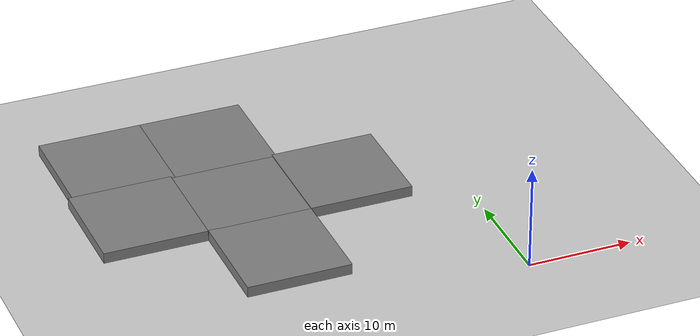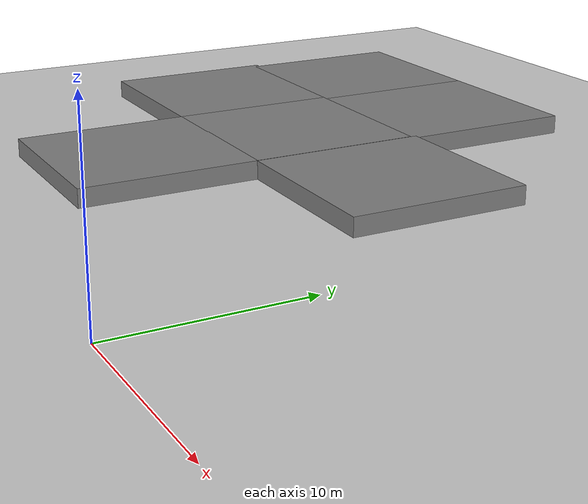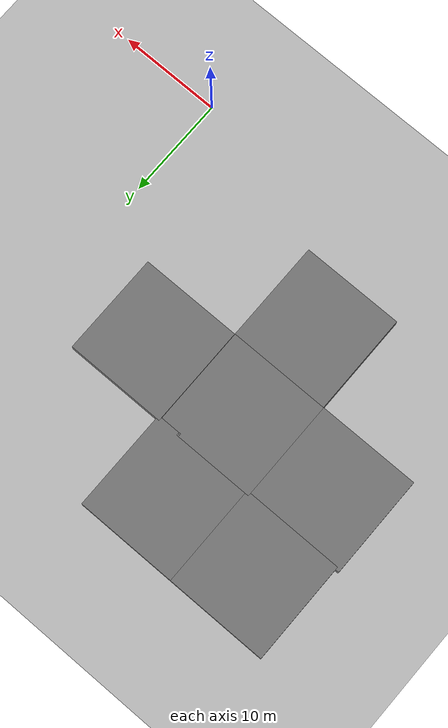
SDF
<sdf version="1.7">
 <world name="default">
  <model name="ground_plane">
   <static>1</static>
   <link name="link">
    <collision name="collision">
     <geometry><plane><normal>0 0 1</normal><size>100 100</size></plane></geometry>
     <surface>
      <contact><collide_bitmask>65535</collide_bitmask></contact>
      <friction><ode><mu>100</mu><mu2>50</mu2></ode></friction>
     </surface>
    </collision>
    <visual name="visual">
     <cast_shadows>0</cast_shadows>
     <geometry><plane><normal>0 0 1</normal><size>100 100</size></plane></geometry>
     <material>
      <script><uri>file://media/materials/scripts/gazebo.material</uri><name>Gazebo/Grey</name></script>
     </material>
    </visual>
   </link>
  </model>
  <model name="farm_clone_0_clone_1_clone_1_clone_9">
   <link name="link">
    <inertial>
     <mass>1</mass>
     <inertia><ixx>1</ixx><ixy>0</ixy><ixz>0</ixz><iyy>1</iyy><iyz>0</iyz><izz>1</izz></inertia>
    </inertial>
    <visual name="visual_1">
     <pose>2 2.5 0 0 -0 0</pose>
     <cast_shadows>0</cast_shadows>
     <geometry><box><size>10 10 2</size></box></geometry>
     <material>
      <script>
       <uri>model://mud_box/materials/scripts</uri>
       <uri>model://mud_box/materials/textures</uri>
       <name>vrc/mud</name>
      </script>
      <shader type="pixel"><normal_map>__default__</normal_map></shader>
      <ambient>0.5 0.5 0.5 1</ambient>
      <diffuse>0.5 0.5 0.5 1</diffuse>
      <specular>0.2 0.2 0.2 1</specular>
      <emissive>0 0 0 1</emissive>
     </material>
    </visual>
    <visual name="visual_2">
     <pose>2 2.5 0 0 -0 0</pose>
     <cast_shadows>0</cast_shadows>
     <geometry><box><size>10 10 2</size></box></geometry>
     <material>
      <script>
       <uri>model://mud_box/materials/scripts</uri>
       <uri>model://mud_box/materials/textures</uri>
       <name>vrc/mud</name>
      </script>
      <shader type="pixel"><normal_map>__default__</normal_map></shader>
      <ambient>0.5 0.5 0.5 1</ambient>
      <diffuse>0.5 0.5 0.5 1</diffuse>
      <specular>0.2 0.2 0.2 1</specular>
      <emissive>0 0 0 1</emissive>
     </material>
    </visual>
    <visual name="visual_4">
     <pose>2 2.5 0 0 -0 0</pose>
     <cast_shadows>0</cast_shadows>
     <geometry><box><size>10 10 2</size></box></geometry>
     <material>
      <script>
       <uri>model://mud_box/materials/scripts</uri>
       <uri>model://mud_box/materials/textures</uri>
       <name>vrc/mud</name>
      </script>
      <shader type="pixel"><normal_map>__default__</normal_map></shader>
      <ambient>0.5 0.5 0.5 1</ambient>
      <diffuse>0.5 0.5 0.5 1</diffuse>
      <specular>0.2 0.2 0.2 1</specular>
      <emissive>0 0 0 1</emissive>
     </material>
    </visual>
    <visual name="visual_3">
     <pose>2 2.5 0 0 -0 0</pose>
     <cast_shadows>0</cast_shadows>
     <geometry><box><size>10 10 2</size></box></geometry>
     <material>
      <script>
       <uri>model://mud_box/materials/scripts</uri>
       <uri>model://mud_box/materials/textures</uri>
       <name>vrc/mud</name>
      </script>
      <shader type="pixel"><normal_map>__default__</normal_map></shader>
      <ambient>0.5 0.5 0.5 1</ambient>
      <diffuse>0.5 0.5 0.5 1</diffuse>
      <specular>0.2 0.2 0.2 1</specular>
      <emissive>0 0 0 1</emissive>
     </material>
    </visual>
    <collision name="collision">
     <laser_retro>0.3</laser_retro>
     <pose>2 2.5 0 0 -0 0</pose>
     <geometry><box><size>100 100 2</size></box></geometry>
     <surface>
      <friction>
       <ode><mu>1.2</mu><mu2>1.2</mu2><fdir1>0 0 0</fdir1><slip1>0.01</slip1><slip2>0.01</slip2></ode>
       <torsional>
        <coefficient>0.05</coefficient>
        <patch_radius>0.08</patch_radius>
        <surface_radius>0.05</surface_radius>
        <use_patch_radius>1</use_patch_radius>
        <ode><slip>0</slip></ode>
       </torsional>
      </friction>
      <bounce><restitution_coefficient>0</restitution_coefficient><threshold>1</threshold></bounce>
      <contact>
       <collide_without_contact>0</collide_without_contact>
       <collide_without_contact_bitmask>1</collide_without_contact_bitmask>
       <collide_bitmask>1</collide_bitmask>
       <ode>
        <soft_cfm>0</soft_cfm>
        <soft_erp>1</soft_erp>
        <kp>1e+07</kp>
        <kd>5000</kd>
        <max_vel>0.001</max_vel>
        <min_depth>0.0005</min_depth>
       </ode>
       <bullet>
        <split_impulse>1</split_impulse>
        <split_impulse_penetration_threshold>-0.01</split_impulse_penetration_threshold>
        <soft_cfm>0</soft_cfm>
        <soft_erp>1</soft_erp>
        <kp>1e+07</kp>
        <kd>5000</kd>
       </bullet>
      </contact>
     </surface>
    </collision>
   </link>
   <static>1</static>
   <pose>-22.2232 7.2134 0 0 -0 0</pose>
  </model>
  <model name="farm_clone_0_clone_1_clone_1_clone_20">
   <link name="link">
    <inertial>
     <mass>1</mass>
     <inertia><ixx>1</ixx><ixy>0</ixy><ixz>0</ixz><iyy>1</iyy><iyz>0</iyz><izz>1</izz></inertia>
    </inertial>
    <visual name="visual_1">
     <pose>2 2.5 0 0 -0 0</pose>
     <cast_shadows>0</cast_shadows>
     <geometry><box><size>10 10 2</size></box></geometry>
     <material>
      <script>
       <uri>model://mud_box/materials/scripts</uri>
       <uri>model://mud_box/materials/textures</uri>
       <name>vrc/mud</name>
      </script>
      <shader type="pixel"><normal_map>__default__</normal_map></shader>
      <ambient>0.5 0.5 0.5 1</ambient>
      <diffuse>0.5 0.5 0.5 1</diffuse>
      <specular>0.2 0.2 0.2 1</specular>
      <emissive>0 0 0 1</emissive>
     </material>
    </visual>
    <visual name="visual_2">
     <pose>2 2.5 0 0 -0 0</pose>
     <cast_shadows>0</cast_shadows>
     <geometry><box><size>10 10 2</size></box></geometry>
     <material>
      <script>
       <uri>model://mud_box/materials/scripts</uri>
       <uri>model://mud_box/materials/textures</uri>
       <name>vrc/mud</name>
      </script>
      <shader type="pixel"><normal_map>__default__</normal_map></shader>
      <ambient>0.5 0.5 0.5 1</ambient>
      <diffuse>0.5 0.5 0.5 1</diffuse>
      <specular>0.2 0.2 0.2 1</specular>
      <emissive>0 0 0 1</emissive>
     </material>
    </visual>
    <visual name="visual_4">
     <pose>2 2.5 0 0 -0 0</pose>
     <cast_shadows>0</cast_shadows>
     <geometry><box><size>10 10 2</size></box></geometry>
     <material>
      <script>
       <uri>model://mud_box/materials/scripts</uri>
       <uri>model://mud_box/materials/textures</uri>
       <name>vrc/mud</name>
      </script>
      <shader type="pixel"><normal_map>__default__</normal_map></shader>
      <ambient>0.5 0.5 0.5 1</ambient>
      <diffuse>0.5 0.5 0.5 1</diffuse>
      <specular>0.2 0.2 0.2 1</specular>
      <emissive>0 0 0 1</emissive>
     </material>
    </visual>
    <visual name="visual_3">
     <pose>2 2.5 0 0 -0 0</pose>
     <cast_shadows>0</cast_shadows>
     <geometry><box><size>10 10 2</size></box></geometry>
     <material>
      <script>
       <uri>model://mud_box/materials/scripts</uri>
       <uri>model://mud_box/materials/textures</uri>
       <name>vrc/mud</name>
      </script>
      <shader type="pixel"><normal_map>__default__</normal_map></shader>
      <ambient>0.5 0.5 0.5 1</ambient>
      <diffuse>0.5 0.5 0.5 1</diffuse>
      <specular>0.2 0.2 0.2 1</specular>
      <emissive>0 0 0 1</emissive>
     </material>
    </visual>
    <collision name="collision">
     <laser_retro>0.3</laser_retro>
     <pose>2 2.5 0 0 -0 0</pose>
     <geometry><box><size>100 100 2</size></box></geometry>
     <surface>
      <friction>
       <ode><mu>1.2</mu><mu2>1.2</mu2><fdir1>0 0 0</fdir1><slip1>0.01</slip1><slip2>0.01</slip2></ode>
       <torsional>
        <coefficient>0.05</coefficient>
        <patch_radius>0.08</patch_radius>
        <surface_radius>0.05</surface_radius>
        <use_patch_radius>1</use_patch_radius>
        <ode><slip>0</slip></ode>
       </torsional>
      </friction>
      <bounce><restitution_coefficient>0</restitution_coefficient><threshold>1</threshold></bounce>
      <contact>
       <collide_without_contact>0</collide_without_contact>
       <collide_without_contact_bitmask>1</collide_without_contact_bitmask>
       <collide_bitmask>1</collide_bitmask>
       <ode>
        <soft_cfm>0</soft_cfm>
        <soft_erp>1</soft_erp>
        <kp>1e+07</kp>
        <kd>5000</kd>
        <max_vel>0.001</max_vel>
        <min_depth>0.0005</min_depth>
       </ode>
       <bullet>
        <split_impulse>1</split_impulse>
        <split_impulse_penetration_threshold>-0.01</split_impulse_penetration_threshold>
        <soft_cfm>0</soft_cfm>
        <soft_erp>1</soft_erp>
        <kp>1e+07</kp>
        <kd>5000</kd>
       </bullet>
      </contact>
     </surface>
    </collision>
   </link>
   <static>1</static>
   <pose>-22.2494 17.1519 0 0 -0 0</pose>
  </model>
  <model name="farm_clone_0_clone_1_clone_1_clone_21">
   <link name="link">
    <inertial>
     <mass>1</mass>
     <inertia><ixx>1</ixx><ixy>0</ixy><ixz>0</ixz><iyy>1</iyy><iyz>0</iyz><izz>1</izz></inertia>
    </inertial>
    <visual name="visual_1">
     <pose>2 2.5 0 0 -0 0</pose>
     <cast_shadows>0</cast_shadows>
     <geometry><box><size>10 10 2</size></box></geometry>
     <material>
      <script>
       <uri>model://mud_box/materials/scripts</uri>
       <uri>model://mud_box/materials/textures</uri>
       <name>vrc/mud</name>
      </script>
      <shader type="pixel"><normal_map>__default__</normal_map></shader>
      <ambient>0.5 0.5 0.5 1</ambient>
      <diffuse>0.5 0.5 0.5 1</diffuse>
      <specular>0.2 0.2 0.2 1</specular>
      <emissive>0 0 0 1</emissive>
     </material>
    </visual>
    <visual name="visual_2">
     <pose>2 2.5 0 0 -0 0</pose>
     <cast_shadows>0</cast_shadows>
     <geometry><box><size>10 10 2</size></box></geometry>
     <material>
      <script>
       <uri>model://mud_box/materials/scripts</uri>
       <uri>model://mud_box/materials/textures</uri>
       <name>vrc/mud</name>
      </script>
      <shader type="pixel"><normal_map>__default__</normal_map></shader>
      <ambient>0.5 0.5 0.5 1</ambient>
      <diffuse>0.5 0.5 0.5 1</diffuse>
      <specular>0.2 0.2 0.2 1</specular>
      <emissive>0 0 0 1</emissive>
     </material>
    </visual>
    <visual name="visual_4">
     <pose>2 2.5 0 0 -0 0</pose>
     <cast_shadows>0</cast_shadows>
     <geometry><box><size>10 10 2</size></box></geometry>
     <material>
      <script>
       <uri>model://mud_box/materials/scripts</uri>
       <uri>model://mud_box/materials/textures</uri>
       <name>vrc/mud</name>
      </script>
      <shader type="pixel"><normal_map>__default__</normal_map></shader>
      <ambient>0.5 0.5 0.5 1</ambient>
      <diffuse>0.5 0.5 0.5 1</diffuse>
      <specular>0.2 0.2 0.2 1</specular>
      <emissive>0 0 0 1</emissive>
     </material>
    </visual>
    <visual name="visual_3">
     <pose>2 2.5 0 0 -0 0</pose>
     <cast_shadows>0</cast_shadows>
     <geometry><box><size>10 10 2</size></box></geometry>
     <material>
      <script>
       <uri>model://mud_box/materials/scripts</uri>
       <uri>model://mud_box/materials/textures</uri>
       <name>vrc/mud</name>
      </script>
      <shader type="pixel"><normal_map>__default__</normal_map></shader>
      <ambient>0.5 0.5 0.5 1</ambient>
      <diffuse>0.5 0.5 0.5 1</diffuse>
      <specular>0.2 0.2 0.2 1</specular>
      <emissive>0 0 0 1</emissive>
     </material>
    </visual>
    <collision name="collision">
     <laser_retro>0.3</laser_retro>
     <pose>2 2.5 0 0 -0 0</pose>
     <geometry><box><size>100 100 2</size></box></geometry>
     <surface>
      <friction>
       <ode><mu>1.2</mu><mu2>1.2</mu2><fdir1>0 0 0</fdir1><slip1>0.01</slip1><slip2>0.01</slip2></ode>
       <torsional>
        <coefficient>0.05</coefficient>
        <patch_radius>0.08</patch_radius>
        <surface_radius>0.05</surface_radius>
        <use_patch_radius>1</use_patch_radius>
        <ode><slip>0</slip></ode>
       </torsional>
      </friction>
      <bounce><restitution_coefficient>0</restitution_coefficient><threshold>1</threshold></bounce>
      <contact>
       <collide_without_contact>0</collide_without_contact>
       <collide_without_contact_bitmask>1</collide_without_contact_bitmask>
       <collide_bitmask>1</collide_bitmask>
       <ode>
        <soft_cfm>0</soft_cfm>
        <soft_erp>1</soft_erp>
        <kp>1e+07</kp>
        <kd>5000</kd>
        <max_vel>0.001</max_vel>
        <min_depth>0.0005</min_depth>
       </ode>
       <bullet>
        <split_impulse>1</split_impulse>
        <split_impulse_penetration_threshold>-0.01</split_impulse_penetration_threshold>
        <soft_cfm>0</soft_cfm>
        <soft_erp>1</soft_erp>
        <kp>1e+07</kp>
        <kd>5000</kd>
       </bullet>
      </contact>
     </surface>
    </collision>
   </link>
   <static>1</static>
   <pose>-12.2155 17.1765 0 0 -0 0</pose>
  </model>
  <model name="farm_clone_0_clone_1_clone_1_clone_25">
   <link name="link">
    <inertial>
     <mass>1</mass>
     <inertia><ixx>1</ixx><ixy>0</ixy><ixz>0</ixz><iyy>1</iyy><iyz>0</iyz><izz>1</izz></inertia>
    </inertial>
    <visual name="visual_1">
     <pose>2 2.5 0 0 -0 0</pose>
     <cast_shadows>0</cast_shadows>
     <geometry><box><size>10 10 2</size></box></geometry>
     <material>
      <script>
       <uri>model://mud_box/materials/scripts</uri>
       <uri>model://mud_box/materials/textures</uri>
       <name>vrc/mud</name>
      </script>
      <shader type="pixel"><normal_map>__default__</normal_map></shader>
      <ambient>0.5 0.5 0.5 1</ambient>
      <diffuse>0.5 0.5 0.5 1</diffuse>
      <specular>0.2 0.2 0.2 1</specular>
      <emissive>0 0 0 1</emissive>
     </material>
    </visual>
    <visual name="visual_2">
     <pose>2 2.5 0 0 -0 0</pose>
     <cast_shadows>0</cast_shadows>
     <geometry><box><size>10 10 2</size></box></geometry>
     <material>
      <script>
       <uri>model://mud_box/materials/scripts</uri>
       <uri>model://mud_box/materials/textures</uri>
       <name>vrc/mud</name>
      </script>
      <shader type="pixel"><normal_map>__default__</normal_map></shader>
      <ambient>0.5 0.5 0.5 1</ambient>
      <diffuse>0.5 0.5 0.5 1</diffuse>
      <specular>0.2 0.2 0.2 1</specular>
      <emissive>0 0 0 1</emissive>
     </material>
    </visual>
    <visual name="visual_4">
     <pose>2 2.5 0 0 -0 0</pose>
     <cast_shadows>0</cast_shadows>
     <geometry><box><size>10 10 2</size></box></geometry>
     <material>
      <script>
       <uri>model://mud_box/materials/scripts</uri>
       <uri>model://mud_box/materials/textures</uri>
       <name>vrc/mud</name>
      </script>
      <shader type="pixel"><normal_map>__default__</normal_map></shader>
      <ambient>0.5 0.5 0.5 1</ambient>
      <diffuse>0.5 0.5 0.5 1</diffuse>
      <specular>0.2 0.2 0.2 1</specular>
      <emissive>0 0 0 1</emissive>
     </material>
    </visual>
    <visual name="visual_3">
     <pose>2 2.5 0 0 -0 0</pose>
     <cast_shadows>0</cast_shadows>
     <geometry><box><size>10 10 2</size></box></geometry>
     <material>
      <script>
       <uri>model://mud_box/materials/scripts</uri>
       <uri>model://mud_box/materials/textures</uri>
       <name>vrc/mud</name>
      </script>
      <shader type="pixel"><normal_map>__default__</normal_map></shader>
      <ambient>0.5 0.5 0.5 1</ambient>
      <diffuse>0.5 0.5 0.5 1</diffuse>
      <specular>0.2 0.2 0.2 1</specular>
      <emissive>0 0 0 1</emissive>
     </material>
    </visual>
    <collision name="collision">
     <laser_retro>0.3</laser_retro>
     <pose>2 2.5 0 0 -0 0</pose>
     <geometry><box><size>100 100 2</size></box></geometry>
     <surface>
      <friction>
       <ode><mu>1.2</mu><mu2>1.2</mu2><fdir1>0 0 0</fdir1><slip1>0.01</slip1><slip2>0.01</slip2></ode>
       <torsional>
        <coefficient>0.05</coefficient>
        <patch_radius>0.08</patch_radius>
        <surface_radius>0.05</surface_radius>
        <use_patch_radius>1</use_patch_radius>
        <ode><slip>0</slip></ode>
       </torsional>
      </friction>
      <bounce><restitution_coefficient>0</restitution_coefficient><threshold>1</threshold></bounce>
      <contact>
       <collide_without_contact>0</collide_without_contact>
       <collide_without_contact_bitmask>1</collide_without_contact_bitmask>
       <collide_bitmask>1</collide_bitmask>
       <ode>
        <soft_cfm>0</soft_cfm>
        <soft_erp>1</soft_erp>
        <kp>1e+07</kp>
        <kd>5000</kd>
        <max_vel>0.001</max_vel>
        <min_depth>0.0005</min_depth>
       </ode>
       <bullet>
        <split_impulse>1</split_impulse>
        <split_impulse_penetration_threshold>-0.01</split_impulse_penetration_threshold>
        <soft_cfm>0</soft_cfm>
        <soft_erp>1</soft_erp>
        <kp>1e+07</kp>
        <kd>5000</kd>
       </bullet>
      </contact>
     </surface>
    </collision>
   </link>
   <static>1</static>
   <pose>-32.2457 17.1348 0 0 -0 0</pose>
  </model>
  <model name="farm_clone_0_clone_1_clone_1_clone_52">
   <link name="link">
    <inertial>
     <mass>1</mass>
     <inertia><ixx>1</ixx><ixy>0</ixy><ixz>0</ixz><iyy>1</iyy><iyz>0</iyz><izz>1</izz></inertia>
    </inertial>
    <visual name="visual_1">
     <pose>2 2.5 0 0 -0 0</pose>
     <cast_shadows>0</cast_shadows>
     <geometry><box><size>10 10 2</size></box></geometry>
     <material>
      <script>
       <uri>model://mud_box/materials/scripts</uri>
       <uri>model://mud_box/materials/textures</uri>
       <name>vrc/mud</name>
      </script>
      <shader type="pixel"><normal_map>__default__</normal_map></shader>
      <ambient>0.5 0.5 0.5 1</ambient>
      <diffuse>0.5 0.5 0.5 1</diffuse>
      <specular>0.2 0.2 0.2 1</specular>
      <emissive>0 0 0 1</emissive>
     </material>
    </visual>
    <visual name="visual_2">
     <pose>2 2.5 0 0 -0 0</pose>
     <cast_shadows>0</cast_shadows>
     <geometry><box><size>10 10 2</size></box></geometry>
     <material>
      <script>
       <uri>model://mud_box/materials/scripts</uri>
       <uri>model://mud_box/materials/textures</uri>
       <name>vrc/mud</name>
      </script>
      <shader type="pixel"><normal_map>__default__</normal_map></shader>
      <ambient>0.5 0.5 0.5 1</ambient>
      <diffuse>0.5 0.5 0.5 1</diffuse>
      <specular>0.2 0.2 0.2 1</specular>
      <emissive>0 0 0 1</emissive>
     </material>
    </visual>
    <visual name="visual_4">
     <pose>2 2.5 0 0 -0 0</pose>
     <cast_shadows>0</cast_shadows>
     <geometry><box><size>10 10 2</size></box></geometry>
     <material>
      <script>
       <uri>model://mud_box/materials/scripts</uri>
       <uri>model://mud_box/materials/textures</uri>
       <name>vrc/mud</name>
      </script>
      <shader type="pixel"><normal_map>__default__</normal_map></shader>
      <ambient>0.5 0.5 0.5 1</ambient>
      <diffuse>0.5 0.5 0.5 1</diffuse>
      <specular>0.2 0.2 0.2 1</specular>
      <emissive>0 0 0 1</emissive>
     </material>
    </visual>
    <visual name="visual_3">
     <pose>2 2.5 0 0 -0 0</pose>
     <cast_shadows>0</cast_shadows>
     <geometry><box><size>10 10 2</size></box></geometry>
     <material>
      <script>
       <uri>model://mud_box/materials/scripts</uri>
       <uri>model://mud_box/materials/textures</uri>
       <name>vrc/mud</name>
      </script>
      <shader type="pixel"><normal_map>__default__</normal_map></shader>
      <ambient>0.5 0.5 0.5 1</ambient>
      <diffuse>0.5 0.5 0.5 1</diffuse>
      <specular>0.2 0.2 0.2 1</specular>
      <emissive>0 0 0 1</emissive>
     </material>
    </visual>
    <collision name="collision">
     <laser_retro>0.3</laser_retro>
     <pose>2 2.5 0 0 -0 0</pose>
     <geometry><box><size>100 100 2</size></box></geometry>
     <surface>
      <friction>
       <ode><mu>1.2</mu><mu2>1.2</mu2><fdir1>0 0 0</fdir1><slip1>0.01</slip1><slip2>0.01</slip2></ode>
       <torsional>
        <coefficient>0.05</coefficient>
        <patch_radius>0.08</patch_radius>
        <surface_radius>0.05</surface_radius>
        <use_patch_radius>1</use_patch_radius>
        <ode><slip>0</slip></ode>
       </torsional>
      </friction>
      <bounce><restitution_coefficient>0</restitution_coefficient><threshold>1</threshold></bounce>
      <contact>
       <collide_without_contact>0</collide_without_contact>
       <collide_without_contact_bitmask>1</collide_without_contact_bitmask>
       <collide_bitmask>1</collide_bitmask>
       <ode>
        <soft_cfm>0</soft_cfm>
        <soft_erp>1</soft_erp>
        <kp>1e+07</kp>
        <kd>5000</kd>
        <max_vel>0.001</max_vel>
        <min_depth>0.0005</min_depth>
       </ode>
       <bullet>
        <split_impulse>1</split_impulse>
        <split_impulse_penetration_threshold>-0.01</split_impulse_penetration_threshold>
        <soft_cfm>0</soft_cfm>
        <soft_erp>1</soft_erp>
        <kp>1e+07</kp>
        <kd>5000</kd>
       </bullet>
      </contact>
     </surface>
    </collision>
   </link>
   <static>1</static>
   <pose>-21.8966 26.8497 0 0 -0 0</pose>
  </model>
  <model name="farm_clone_0_clone_1_clone_1_clone_53">
   <link name="link">
    <inertial>
     <mass>1</mass>
     <inertia><ixx>1</ixx><ixy>0</ixy><ixz>0</ixz><iyy>1</iyy><iyz>0</iyz><izz>1</izz></inertia>
    </inertial>
    <visual name="visual_1">
     <pose>2 2.5 0 0 -0 0</pose>
     <cast_shadows>0</cast_shadows>
     <geometry><box><size>10 10 2</size></box></geometry>
     <material>
      <script>
       <uri>model://mud_box/materials/scripts</uri>
       <uri>model://mud_box/materials/textures</uri>
       <name>vrc/mud</name>
      </script>
      <shader type="pixel"><normal_map>__default__</normal_map></shader>
      <ambient>0.5 0.5 0.5 1</ambient>
      <diffuse>0.5 0.5 0.5 1</diffuse>
      <specular>0.2 0.2 0.2 1</specular>
      <emissive>0 0 0 1</emissive>
     </material>
    </visual>
    <visual name="visual_2">
     <pose>2 2.5 0 0 -0 0</pose>
     <cast_shadows>0</cast_shadows>
     <geometry><box><size>10 10 2</size></box></geometry>
     <material>
      <script>
       <uri>model://mud_box/materials/scripts</uri>
       <uri>model://mud_box/materials/textures</uri>
       <name>vrc/mud</name>
      </script>
      <shader type="pixel"><normal_map>__default__</normal_map></shader>
      <ambient>0.5 0.5 0.5 1</ambient>
      <diffuse>0.5 0.5 0.5 1</diffuse>
      <specular>0.2 0.2 0.2 1</specular>
      <emissive>0 0 0 1</emissive>
     </material>
    </visual>
    <visual name="visual_4">
     <pose>2 2.5 0 0 -0 0</pose>
     <cast_shadows>0</cast_shadows>
     <geometry><box><size>10 10 2</size></box></geometry>
     <material>
      <script>
       <uri>model://mud_box/materials/scripts</uri>
       <uri>model://mud_box/materials/textures</uri>
       <name>vrc/mud</name>
      </script>
      <shader type="pixel"><normal_map>__default__</normal_map></shader>
      <ambient>0.5 0.5 0.5 1</ambient>
      <diffuse>0.5 0.5 0.5 1</diffuse>
      <specular>0.2 0.2 0.2 1</specular>
      <emissive>0 0 0 1</emissive>
     </material>
    </visual>
    <visual name="visual_3">
     <pose>2 2.5 0 0 -0 0</pose>
     <cast_shadows>0</cast_shadows>
     <geometry><box><size>10 10 2</size></box></geometry>
     <material>
      <script>
       <uri>model://mud_box/materials/scripts</uri>
       <uri>model://mud_box/materials/textures</uri>
       <name>vrc/mud</name>
      </script>
      <shader type="pixel"><normal_map>__default__</normal_map></shader>
      <ambient>0.5 0.5 0.5 1</ambient>
      <diffuse>0.5 0.5 0.5 1</diffuse>
      <specular>0.2 0.2 0.2 1</specular>
      <emissive>0 0 0 1</emissive>
     </material>
    </visual>
    <collision name="collision">
     <laser_retro>0.3</laser_retro>
     <pose>2 2.5 0 0 -0 0</pose>
     <geometry><box><size>100 100 2</size></box></geometry>
     <surface>
      <friction>
       <ode><mu>1.2</mu><mu2>1.2</mu2><fdir1>0 0 0</fdir1><slip1>0.01</slip1><slip2>0.01</slip2></ode>
       <torsional>
        <coefficient>0.05</coefficient>
        <patch_radius>0.08</patch_radius>
        <surface_radius>0.05</surface_radius>
        <use_patch_radius>1</use_patch_radius>
        <ode><slip>0</slip></ode>
       </torsional>
      </friction>
      <bounce><restitution_coefficient>0</restitution_coefficient><threshold>1</threshold></bounce>
      <contact>
       <collide_without_contact>0</collide_without_contact>
       <collide_without_contact_bitmask>1</collide_without_contact_bitmask>
       <collide_bitmask>1</collide_bitmask>
       <ode>
        <soft_cfm>0</soft_cfm>
        <soft_erp>1</soft_erp>
        <kp>1e+07</kp>
        <kd>5000</kd>
        <max_vel>0.001</max_vel>
        <min_depth>0.0005</min_depth>
       </ode>
       <bullet>
        <split_impulse>1</split_impulse>
        <split_impulse_penetration_threshold>-0.01</split_impulse_penetration_threshold>
        <soft_cfm>0</soft_cfm>
        <soft_erp>1</soft_erp>
        <kp>1e+07</kp>
        <kd>5000</kd>
       </bullet>
      </contact>
     </surface>
    </collision>
   </link>
   <static>1</static>
   <pose>-31.887 26.8497 0 0 -0 0</pose>
  </model>
 </world>
</sdf>
